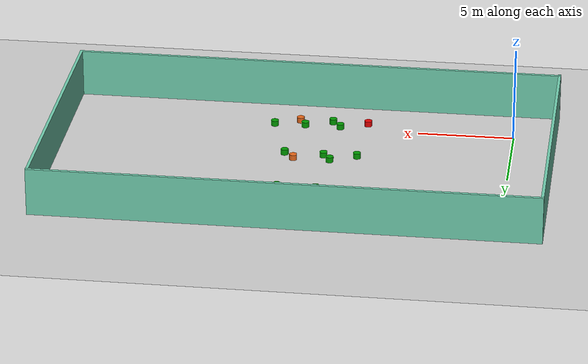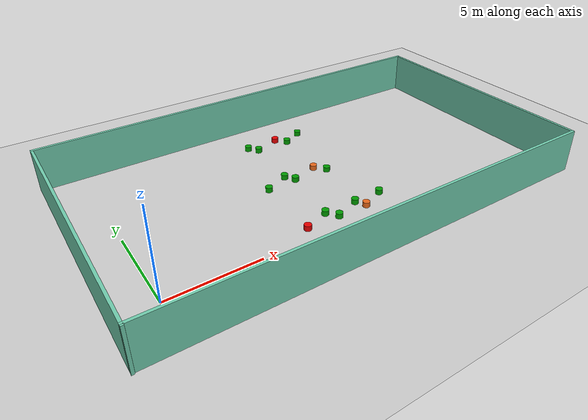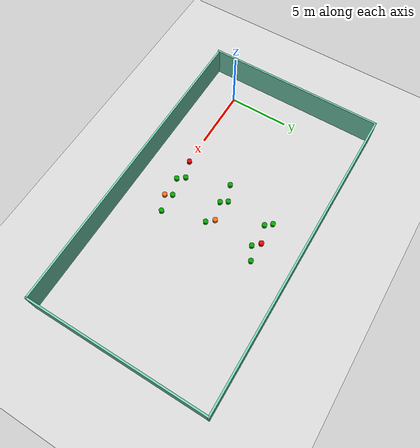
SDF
<sdf version="1.7">
 <world name="default">
  <model name="ground_plane">
   <static>1</static>
   <link name="link">
    <collision name="collision">
     <geometry><plane><normal>0 0 1</normal><size>100 100</size></plane></geometry>
     <surface><friction><ode><mu>100</mu><mu2>50</mu2></ode></friction></surface>
    </collision>
    <visual name="visual">
     <cast_shadows>0</cast_shadows>
     <geometry><plane><normal>0 0 1</normal><size>100 100</size></plane></geometry>
     <material>
      <script><uri>file://media/materials/scripts/gazebo.material</uri><name>Gazebo/Grey</name></script>
     </material>
    </visual>
   </link>
  </model>
  <model name="Test_pot_red">
   <link name="link_0">
    <inertial>
     <mass>0.044841</mass>
     <inertia>
      <ixx>0.00074807</ixx>
      <ixy>0</ixy>
      <ixz>0</ixz>
      <iyy>0.00074807</iyy>
      <iyz>0</iyz>
      <izz>0.00086495</izz>
     </inertia>
    </inertial>
    <pose>3e-06 1e-06 -0 0 -0 0</pose>
    <visual name="visual">
     <geometry><cylinder><radius>0.196415</radius><length>0.290612</length></cylinder></geometry>
     <material>
      <lighting>1</lighting>
      <script><uri>file://media/materials/scripts/gazebo.material</uri><name>Gazebo/Grey</name></script>
      <shader type="pixel"><normal_map>__default__</normal_map></shader>
      <ambient>0.3 0.3 0.3 1</ambient>
      <diffuse>0.9 0 0 1</diffuse>
      <specular>0.01 0.01 0.01 1</specular>
      <emissive>0 0 0 1</emissive>
     </material>
    </visual>
    <collision name="collision">
     <geometry><cylinder><radius>0.196415</radius><length>0.290612</length></cylinder></geometry>
     <surface>
      <friction>
       <ode><mu>1</mu><mu2>1</mu2><fdir1>0 0 0</fdir1><slip1>0</slip1><slip2>0</slip2></ode>
       <torsional>
        <coefficient>1</coefficient>
        <patch_radius>0</patch_radius>
        <surface_radius>0</surface_radius>
        <use_patch_radius>1</use_patch_radius>
        <ode><slip>0</slip></ode>
       </torsional>
      </friction>
      <bounce><restitution_coefficient>0</restitution_coefficient><threshold>1e+06</threshold></bounce>
      <contact>
       <collide_without_contact>0</collide_without_contact>
       <collide_without_contact_bitmask>1</collide_without_contact_bitmask>
       <collide_bitmask>1</collide_bitmask>
       <ode>
        <soft_cfm>0</soft_cfm>
        <soft_erp>0.2</soft_erp>
        <kp>1e+13</kp>
        <kd>1</kd>
        <max_vel>0.01</max_vel>
        <min_depth>0</min_depth>
       </ode>
       <bullet>
        <split_impulse>1</split_impulse>
        <split_impulse_penetration_threshold>-0.01</split_impulse_penetration_threshold>
        <soft_cfm>0</soft_cfm>
        <soft_erp>0.2</soft_erp>
        <kp>1e+13</kp>
        <kd>1</kd>
       </bullet>
      </contact>
     </surface>
    </collision>
   </link>
   <static>0</static>
   <pose>7.62258 0.258837 0.575565 2.7e-05 0 0.006551</pose>
  </model>
  <model name="Test_pot_orange">
   <link name="link_0">
    <inertial>
     <mass>0.044841</mass>
     <inertia>
      <ixx>0.00074807</ixx>
      <ixy>0</ixy>
      <ixz>0</ixz>
      <iyy>0.00074807</iyy>
      <iyz>0</iyz>
      <izz>0.00086495</izz>
     </inertia>
    </inertial>
    <pose>3e-06 1e-06 -0 0 -0 0</pose>
    <visual name="visual">
     <geometry><cylinder><radius>0.196415</radius><length>0.290612</length></cylinder></geometry>
     <material>
      <lighting>1</lighting>
      <script><uri>file://media/materials/scripts/gazebo.material</uri><name>Gazebo/Grey</name></script>
      <shader type="pixel"><normal_map>__default__</normal_map></shader>
      <ambient>0.3 0.3 0.3 1</ambient>
      <diffuse>0.9 0.4 0.1 1</diffuse>
      <specular>0.01 0.01 0.01 1</specular>
      <emissive>0 0 0 1</emissive>
     </material>
    </visual>
    <collision name="collision">
     <geometry><cylinder><radius>0.196415</radius><length>0.290612</length></cylinder></geometry>
     <surface>
      <friction>
       <ode><mu>1</mu><mu2>1</mu2><fdir1>0 0 0</fdir1><slip1>0</slip1><slip2>0</slip2></ode>
       <torsional>
        <coefficient>1</coefficient>
        <patch_radius>0</patch_radius>
        <surface_radius>0</surface_radius>
        <use_patch_radius>1</use_patch_radius>
        <ode><slip>0</slip></ode>
       </torsional>
      </friction>
      <bounce><restitution_coefficient>0</restitution_coefficient><threshold>1e+06</threshold></bounce>
      <contact>
       <collide_without_contact>0</collide_without_contact>
       <collide_without_contact_bitmask>1</collide_without_contact_bitmask>
       <collide_bitmask>1</collide_bitmask>
       <ode>
        <soft_cfm>0</soft_cfm>
        <soft_erp>0.2</soft_erp>
        <kp>1e+13</kp>
        <kd>1</kd>
        <max_vel>0.01</max_vel>
        <min_depth>0</min_depth>
       </ode>
       <bullet>
        <split_impulse>1</split_impulse>
        <split_impulse_penetration_threshold>-0.01</split_impulse_penetration_threshold>
        <soft_cfm>0</soft_cfm>
        <soft_erp>0.2</soft_erp>
        <kp>1e+13</kp>
        <kd>1</kd>
       </bullet>
      </contact>
     </surface>
    </collision>
   </link>
   <static>0</static>
   <pose>11.1966 0.219359 0.57385 9.3e-05 -8e-06 0.011416</pose>
  </model>
  <model name="walls3">
   <link name="Wall_10">
    <pose>12.8059 -2.49306 0 0 -0 1.5708</pose>
    <inertial>
     <inertia><ixx>0</ixx><ixy>0</ixy><ixz>0</ixz><iyy>0</iyy><iyz>0</iyz><izz>0</izz></inertia>
     <mass>0</mass>
    </inertial>
    <visual name="Wall_10_Visual">
     <pose>0 0 1.25 0 -0 0</pose>
     <geometry><box><size>14.709 0.15 2.5</size></box></geometry>
     <material>
      <script><uri>file://media/materials/scripts/gazebo.material</uri><name>Gazebo/Grey</name></script>
      <ambient>0.435294 0.796078 0.67451 1</ambient>
      <shader type="pixel"/>
     </material>
     <meta><layer>0</layer></meta>
    </visual>
    <collision name="Wall_10_Collision">
     <pose>0 0 1.25 0 -0 0</pose>
     <geometry><box><size>14.709 0.15 2.5</size></box></geometry>
     <surface>
      <friction>
       <ode><mu>1</mu><mu2>1</mu2><fdir1>0 0 0</fdir1><slip1>0</slip1><slip2>0</slip2></ode>
       <torsional>
        <coefficient>1</coefficient>
        <patch_radius>0</patch_radius>
        <surface_radius>0</surface_radius>
        <use_patch_radius>1</use_patch_radius>
        <ode><slip>0</slip></ode>
       </torsional>
      </friction>
      <bounce><restitution_coefficient>0</restitution_coefficient><threshold>1e+06</threshold></bounce>
      <contact>
       <collide_without_contact>0</collide_without_contact>
       <collide_without_contact_bitmask>1</collide_without_contact_bitmask>
       <collide_bitmask>1</collide_bitmask>
       <ode>
        <soft_cfm>0</soft_cfm>
        <soft_erp>0.2</soft_erp>
        <kp>1e+13</kp>
        <kd>1</kd>
        <max_vel>0.01</max_vel>
        <min_depth>0</min_depth>
       </ode>
       <bullet>
        <split_impulse>1</split_impulse>
        <split_impulse_penetration_threshold>-0.01</split_impulse_penetration_threshold>
        <soft_cfm>0</soft_cfm>
        <soft_erp>0.2</soft_erp>
        <kp>1e+13</kp>
        <kd>1</kd>
       </bullet>
      </contact>
     </surface>
    </collision>
   </link>
   <link name="Wall_12">
    <pose>0.013351 4.87054 0 0 -0 0</pose>
    <inertial>
     <inertia><ixx>0</ixx><ixy>0</ixy><ixz>0</ixz><iyy>0</iyy><iyz>0</iyz><izz>0</izz></inertia>
     <mass>0</mass>
    </inertial>
    <visual name="Wall_12_Visual">
     <pose>0 0 1.25 0 -0 0</pose>
     <geometry><box><size>25.75 0.15 2.5</size></box></geometry>
     <material>
      <script><uri>file://media/materials/scripts/gazebo.material</uri><name>Gazebo/Grey</name></script>
      <ambient>0.435294 0.796078 0.67451 1</ambient>
      <shader type="pixel"/>
     </material>
     <meta><layer>0</layer></meta>
    </visual>
    <collision name="Wall_12_Collision">
     <pose>0 0 1.25 0 -0 0</pose>
     <geometry><box><size>25.75 0.15 2.5</size></box></geometry>
     <surface>
      <friction>
       <ode><mu>1</mu><mu2>1</mu2><fdir1>0 0 0</fdir1><slip1>0</slip1><slip2>0</slip2></ode>
       <torsional>
        <coefficient>1</coefficient>
        <patch_radius>0</patch_radius>
        <surface_radius>0</surface_radius>
        <use_patch_radius>1</use_patch_radius>
        <ode><slip>0</slip></ode>
       </torsional>
      </friction>
      <bounce><restitution_coefficient>0</restitution_coefficient><threshold>1e+06</threshold></bounce>
      <contact>
       <collide_without_contact>0</collide_without_contact>
       <collide_without_contact_bitmask>1</collide_without_contact_bitmask>
       <collide_bitmask>1</collide_bitmask>
       <ode>
        <soft_cfm>0</soft_cfm>
        <soft_erp>0.2</soft_erp>
        <kp>1e+13</kp>
        <kd>1</kd>
        <max_vel>0.01</max_vel>
        <min_depth>0</min_depth>
       </ode>
       <bullet>
        <split_impulse>1</split_impulse>
        <split_impulse_penetration_threshold>-0.01</split_impulse_penetration_threshold>
        <soft_cfm>0</soft_cfm>
        <soft_erp>0.2</soft_erp>
        <kp>1e+13</kp>
        <kd>1</kd>
       </bullet>
      </contact>
     </surface>
    </collision>
   </link>
   <link name="Wall_6">
    <pose>-12.8033 -2.47448 0 0 0 -1.57216</pose>
    <inertial>
     <inertia><ixx>0</ixx><ixy>0</ixy><ixz>0</ixz><iyy>0</iyy><iyz>0</iyz><izz>0</izz></inertia>
     <mass>0</mass>
    </inertial>
    <visual name="Wall_6_Visual">
     <pose>0 0 1.25 0 -0 0</pose>
     <geometry><box><size>14.8095 0.15 2.5</size></box></geometry>
     <material>
      <script><uri>file://media/materials/scripts/gazebo.material</uri><name>Gazebo/Grey</name></script>
      <ambient>0.435294 0.796078 0.67451 1</ambient>
      <shader type="pixel"/>
     </material>
     <meta><layer>0</layer></meta>
    </visual>
    <collision name="Wall_6_Collision">
     <pose>0 0 1.25 0 -0 0</pose>
     <geometry><box><size>14.8095 0.15 2.5</size></box></geometry>
     <surface>
      <friction>
       <ode><mu>1</mu><mu2>1</mu2><fdir1>0 0 0</fdir1><slip1>0</slip1><slip2>0</slip2></ode>
       <torsional>
        <coefficient>1</coefficient>
        <patch_radius>0</patch_radius>
        <surface_radius>0</surface_radius>
        <use_patch_radius>1</use_patch_radius>
        <ode><slip>0</slip></ode>
       </torsional>
      </friction>
      <bounce><restitution_coefficient>0</restitution_coefficient><threshold>1e+06</threshold></bounce>
      <contact>
       <collide_without_contact>0</collide_without_contact>
       <collide_without_contact_bitmask>1</collide_without_contact_bitmask>
       <collide_bitmask>1</collide_bitmask>
       <ode>
        <soft_cfm>0</soft_cfm>
        <soft_erp>0.2</soft_erp>
        <kp>1e+13</kp>
        <kd>1</kd>
        <max_vel>0.01</max_vel>
        <min_depth>0</min_depth>
       </ode>
       <bullet>
        <split_impulse>1</split_impulse>
        <split_impulse_penetration_threshold>-0.01</split_impulse_penetration_threshold>
        <soft_cfm>0</soft_cfm>
        <soft_erp>0.2</soft_erp>
        <kp>1e+13</kp>
        <kd>1</kd>
       </bullet>
      </contact>
     </surface>
    </collision>
   </link>
   <link name="Wall_8">
    <pose>-0.003688 -9.7616 0 0 0 -0.001038</pose>
    <visual name="Wall_8_Visual">
     <pose>0 0 1.25 0 -0 0</pose>
     <geometry><box><size>25.7691 0.15 2.5</size></box></geometry>
     <material>
      <script><uri>file://media/materials/scripts/gazebo.material</uri><name>Gazebo/Grey</name></script>
      <ambient>0.435294 0.796078 0.67451 1</ambient>
      <shader type="pixel"/>
     </material>
     <meta><layer>0</layer></meta>
    </visual>
    <collision name="Wall_8_Collision">
     <pose>0 0 1.25 0 -0 0</pose>
     <geometry><box><size>25.7691 0.15 2.5</size></box></geometry>
     <surface>
      <friction>
       <ode><mu>1</mu><mu2>1</mu2><fdir1>0 0 0</fdir1><slip1>0</slip1><slip2>0</slip2></ode>
       <torsional>
        <coefficient>1</coefficient>
        <patch_radius>0</patch_radius>
        <surface_radius>0</surface_radius>
        <use_patch_radius>1</use_patch_radius>
        <ode><slip>0</slip></ode>
       </torsional>
      </friction>
      <bounce><restitution_coefficient>0</restitution_coefficient><threshold>1e+06</threshold></bounce>
      <contact>
       <collide_without_contact>0</collide_without_contact>
       <collide_without_contact_bitmask>1</collide_without_contact_bitmask>
       <collide_bitmask>1</collide_bitmask>
       <ode>
        <soft_cfm>0</soft_cfm>
        <soft_erp>0.2</soft_erp>
        <kp>1e+13</kp>
        <kd>1</kd>
        <max_vel>0.01</max_vel>
        <min_depth>0</min_depth>
       </ode>
       <bullet>
        <split_impulse>1</split_impulse>
        <split_impulse_penetration_threshold>-0.01</split_impulse_penetration_threshold>
        <soft_cfm>0</soft_cfm>
        <soft_erp>0.2</soft_erp>
        <kp>1e+13</kp>
        <kd>1</kd>
       </bullet>
      </contact>
     </surface>
    </collision>
   </link>
   <static>1</static>
   <pose>10.639 6.94407 0 0 -0 0</pose>
  </model>
  <model name="Test_pot_green_clone_0">
   <link name="link_0">
    <inertial>
     <mass>0.044841</mass>
     <inertia>
      <ixx>0.00074807</ixx>
      <ixy>0</ixy>
      <ixz>0</ixz>
      <iyy>0.00074807</iyy>
      <iyz>0</iyz>
      <izz>0.00086495</izz>
     </inertia>
    </inertial>
    <pose>3e-06 1e-06 0 0 -0 0</pose>
    <visual name="visual">
     <geometry><cylinder><radius>0.196415</radius><length>0.290612</length></cylinder></geometry>
     <material>
      <lighting>1</lighting>
      <script><uri>file://media/materials/scripts/gazebo.material</uri><name>Gazebo/Grey</name></script>
      <shader type="pixel"><normal_map>__default__</normal_map></shader>
      <diffuse>0 0.6 0 0</diffuse>
      <ambient>0.3 0.3 0.3 1</ambient>
      <specular>0.01 0.01 0.01 1</specular>
      <emissive>0 0 0 1</emissive>
     </material>
    </visual>
    <collision name="collision">
     <geometry><cylinder><radius>0.196415</radius><length>0.290612</length></cylinder></geometry>
     <surface>
      <friction>
       <ode><mu>1</mu><mu2>1</mu2><fdir1>0 0 0</fdir1><slip1>0</slip1><slip2>0</slip2></ode>
       <torsional>
        <coefficient>1</coefficient>
        <patch_radius>0</patch_radius>
        <surface_radius>0</surface_radius>
        <use_patch_radius>1</use_patch_radius>
        <ode><slip>0</slip></ode>
       </torsional>
      </friction>
      <bounce><restitution_coefficient>0</restitution_coefficient><threshold>1e+06</threshold></bounce>
      <contact>
       <collide_without_contact>0</collide_without_contact>
       <collide_without_contact_bitmask>1</collide_without_contact_bitmask>
       <collide_bitmask>1</collide_bitmask>
       <ode>
        <soft_cfm>0</soft_cfm>
        <soft_erp>0.2</soft_erp>
        <kp>1e+13</kp>
        <kd>1</kd>
        <max_vel>0.01</max_vel>
        <min_depth>0</min_depth>
       </ode>
       <bullet>
        <split_impulse>1</split_impulse>
        <split_impulse_penetration_threshold>-0.01</split_impulse_penetration_threshold>
        <soft_cfm>0</soft_cfm>
        <soft_erp>0.2</soft_erp>
        <kp>1e+13</kp>
        <kd>1</kd>
       </bullet>
      </contact>
     </surface>
    </collision>
   </link>
   <static>0</static>
   <pose>7.78114 4.20143 0.575591 0 -1.1e-05 0.003268</pose>
  </model>
  <model name="Test_pot_green_clone_1">
   <link name="link_0">
    <inertial>
     <mass>0.044841</mass>
     <inertia>
      <ixx>0.00074807</ixx>
      <ixy>0</ixy>
      <ixz>0</ixz>
      <iyy>0.00074807</iyy>
      <iyz>0</iyz>
      <izz>0.00086495</izz>
     </inertia>
    </inertial>
    <pose>3e-06 1e-06 0 0 -0 0</pose>
    <visual name="visual">
     <geometry><cylinder><radius>0.196415</radius><length>0.290612</length></cylinder></geometry>
     <material>
      <lighting>1</lighting>
      <script><uri>file://media/materials/scripts/gazebo.material</uri><name>Gazebo/Grey</name></script>
      <shader type="pixel"><normal_map>__default__</normal_map></shader>
      <diffuse>0 0.6 0 0</diffuse>
      <ambient>0.3 0.3 0.3 1</ambient>
      <specular>0.01 0.01 0.01 1</specular>
      <emissive>0 0 0 1</emissive>
     </material>
    </visual>
    <collision name="collision">
     <geometry><cylinder><radius>0.196415</radius><length>0.290612</length></cylinder></geometry>
     <surface>
      <friction>
       <ode><mu>1</mu><mu2>1</mu2><fdir1>0 0 0</fdir1><slip1>0</slip1><slip2>0</slip2></ode>
       <torsional>
        <coefficient>1</coefficient>
        <patch_radius>0</patch_radius>
        <surface_radius>0</surface_radius>
        <use_patch_radius>1</use_patch_radius>
        <ode><slip>0</slip></ode>
       </torsional>
      </friction>
      <bounce><restitution_coefficient>0</restitution_coefficient><threshold>1e+06</threshold></bounce>
      <contact>
       <collide_without_contact>0</collide_without_contact>
       <collide_without_contact_bitmask>1</collide_without_contact_bitmask>
       <collide_bitmask>1</collide_bitmask>
       <ode>
        <soft_cfm>0</soft_cfm>
        <soft_erp>0.2</soft_erp>
        <kp>1e+13</kp>
        <kd>1</kd>
        <max_vel>0.01</max_vel>
        <min_depth>0</min_depth>
       </ode>
       <bullet>
        <split_impulse>1</split_impulse>
        <split_impulse_penetration_threshold>-0.01</split_impulse_penetration_threshold>
        <soft_cfm>0</soft_cfm>
        <soft_erp>0.2</soft_erp>
        <kp>1e+13</kp>
        <kd>1</kd>
       </bullet>
      </contact>
     </surface>
    </collision>
   </link>
   <static>0</static>
   <pose>11.5309 4.19869 0.575589 -1e-06 -0 0.01172</pose>
  </model>
  <model name="Test_pot_green_clone_4">
   <link name="link_0">
    <inertial>
     <mass>0.044841</mass>
     <inertia>
      <ixx>0.00074807</ixx>
      <ixy>0</ixy>
      <ixz>0</ixz>
      <iyy>0.00074807</iyy>
      <iyz>0</iyz>
      <izz>0.00086495</izz>
     </inertia>
    </inertial>
    <pose>3e-06 1e-06 0 0 -0 0</pose>
    <visual name="visual">
     <geometry><cylinder><radius>0.196415</radius><length>0.290612</length></cylinder></geometry>
     <material>
      <lighting>1</lighting>
      <script><uri>file://media/materials/scripts/gazebo.material</uri><name>Gazebo/Grey</name></script>
      <shader type="pixel"><normal_map>__default__</normal_map></shader>
      <diffuse>0 0.6 0 0</diffuse>
      <ambient>0.3 0.3 0.3 1</ambient>
      <specular>0.01 0.01 0.01 1</specular>
      <emissive>0 0 0 1</emissive>
     </material>
    </visual>
    <collision name="collision">
     <geometry><cylinder><radius>0.196415</radius><length>0.290612</length></cylinder></geometry>
     <surface>
      <friction>
       <ode><mu>1</mu><mu2>1</mu2><fdir1>0 0 0</fdir1><slip1>0</slip1><slip2>0</slip2></ode>
       <torsional>
        <coefficient>1</coefficient>
        <patch_radius>0</patch_radius>
        <surface_radius>0</surface_radius>
        <use_patch_radius>1</use_patch_radius>
        <ode><slip>0</slip></ode>
       </torsional>
      </friction>
      <bounce><restitution_coefficient>0</restitution_coefficient><threshold>1e+06</threshold></bounce>
      <contact>
       <collide_without_contact>0</collide_without_contact>
       <collide_without_contact_bitmask>1</collide_without_contact_bitmask>
       <collide_bitmask>1</collide_bitmask>
       <ode>
        <soft_cfm>0</soft_cfm>
        <soft_erp>0.2</soft_erp>
        <kp>1e+13</kp>
        <kd>1</kd>
        <max_vel>0.01</max_vel>
        <min_depth>0</min_depth>
       </ode>
       <bullet>
        <split_impulse>1</split_impulse>
        <split_impulse_penetration_threshold>-0.01</split_impulse_penetration_threshold>
        <soft_cfm>0</soft_cfm>
        <soft_erp>0.2</soft_erp>
        <kp>1e+13</kp>
        <kd>1</kd>
       </bullet>
      </contact>
     </surface>
    </collision>
   </link>
   <static>0</static>
   <pose>11.4075 8.2105 0.574212 0.000102 -7e-06 0.025878</pose>
  </model>
  <model name="Test_pot_green_clone_8">
   <link name="link_0">
    <inertial>
     <mass>0.044841</mass>
     <inertia>
      <ixx>0.00074807</ixx>
      <ixy>0</ixy>
      <ixz>0</ixz>
      <iyy>0.00074807</iyy>
      <iyz>0</iyz>
      <izz>0.00086495</izz>
     </inertia>
    </inertial>
    <pose>3e-06 1e-06 0 0 -0 0</pose>
    <visual name="visual">
     <geometry><cylinder><radius>0.196415</radius><length>0.290612</length></cylinder></geometry>
     <material>
      <lighting>1</lighting>
      <script><uri>file://media/materials/scripts/gazebo.material</uri><name>Gazebo/Grey</name></script>
      <shader type="pixel"><normal_map>__default__</normal_map></shader>
      <diffuse>0 0.6 0 0</diffuse>
      <ambient>0.3 0.3 0.3 1</ambient>
      <specular>0.01 0.01 0.01 1</specular>
      <emissive>0 0 0 1</emissive>
     </material>
    </visual>
    <collision name="collision">
     <geometry><cylinder><radius>0.196415</radius><length>0.290612</length></cylinder></geometry>
     <surface>
      <friction>
       <ode><mu>1</mu><mu2>1</mu2><fdir1>0 0 0</fdir1><slip1>0</slip1><slip2>0</slip2></ode>
       <torsional>
        <coefficient>1</coefficient>
        <patch_radius>0</patch_radius>
        <surface_radius>0</surface_radius>
        <use_patch_radius>1</use_patch_radius>
        <ode><slip>0</slip></ode>
       </torsional>
      </friction>
      <bounce><restitution_coefficient>0</restitution_coefficient><threshold>1e+06</threshold></bounce>
      <contact>
       <collide_without_contact>0</collide_without_contact>
       <collide_without_contact_bitmask>1</collide_without_contact_bitmask>
       <collide_bitmask>1</collide_bitmask>
       <ode>
        <soft_cfm>0</soft_cfm>
        <soft_erp>0.2</soft_erp>
        <kp>1e+13</kp>
        <kd>1</kd>
        <max_vel>0.01</max_vel>
        <min_depth>0</min_depth>
       </ode>
       <bullet>
        <split_impulse>1</split_impulse>
        <split_impulse_penetration_threshold>-0.01</split_impulse_penetration_threshold>
        <soft_cfm>0</soft_cfm>
        <soft_erp>0.2</soft_erp>
        <kp>1e+13</kp>
        <kd>1</kd>
       </bullet>
      </contact>
     </surface>
    </collision>
   </link>
   <static>0</static>
   <pose>10.8855 0.760232 0.575592 3e-06 -1.6e-05 0.004425</pose>
  </model>
  <model name="Test_pot_orange_clone_clone">
   <link name="link_0">
    <inertial>
     <mass>0.044841</mass>
     <inertia>
      <ixx>0.00074807</ixx>
      <ixy>0</ixy>
      <ixz>0</ixz>
      <iyy>0.00074807</iyy>
      <iyz>0</iyz>
      <izz>0.00086495</izz>
     </inertia>
    </inertial>
    <pose>3e-06 1e-06 -0 0 -0 0</pose>
    <visual name="visual">
     <geometry><cylinder><radius>0.196415</radius><length>0.290612</length></cylinder></geometry>
     <material>
      <lighting>1</lighting>
      <script><uri>file://media/materials/scripts/gazebo.material</uri><name>Gazebo/Grey</name></script>
      <shader type="pixel"><normal_map>__default__</normal_map></shader>
      <ambient>0.3 0.3 0.3 1</ambient>
      <diffuse>0.9 0.4 0.1 1</diffuse>
      <specular>0.01 0.01 0.01 1</specular>
      <emissive>0 0 0 1</emissive>
     </material>
    </visual>
    <collision name="collision">
     <geometry><cylinder><radius>0.196415</radius><length>0.290612</length></cylinder></geometry>
     <surface>
      <friction>
       <ode><mu>1</mu><mu2>1</mu2><fdir1>0 0 0</fdir1><slip1>0</slip1><slip2>0</slip2></ode>
       <torsional>
        <coefficient>1</coefficient>
        <patch_radius>0</patch_radius>
        <surface_radius>0</surface_radius>
        <use_patch_radius>1</use_patch_radius>
        <ode><slip>0</slip></ode>
       </torsional>
      </friction>
      <bounce><restitution_coefficient>0</restitution_coefficient><threshold>1e+06</threshold></bounce>
      <contact>
       <collide_without_contact>0</collide_without_contact>
       <collide_without_contact_bitmask>1</collide_without_contact_bitmask>
       <collide_bitmask>1</collide_bitmask>
       <ode>
        <soft_cfm>0</soft_cfm>
        <soft_erp>0.2</soft_erp>
        <kp>1e+13</kp>
        <kd>1</kd>
        <max_vel>0.01</max_vel>
        <min_depth>0</min_depth>
       </ode>
       <bullet>
        <split_impulse>1</split_impulse>
        <split_impulse_penetration_threshold>-0.01</split_impulse_penetration_threshold>
        <soft_cfm>0</soft_cfm>
        <soft_erp>0.2</soft_erp>
        <kp>1e+13</kp>
        <kd>1</kd>
       </bullet>
      </contact>
     </surface>
    </collision>
   </link>
   <static>0</static>
   <pose>11.0193 4.76473 0.575589 -1e-06 -0 0.004456</pose>
  </model>
  <model name="Test_pot_red_clone">
   <link name="link_0">
    <inertial>
     <mass>0.044841</mass>
     <inertia>
      <ixx>0.00074807</ixx>
      <ixy>0</ixy>
      <ixz>0</ixz>
      <iyy>0.00074807</iyy>
      <iyz>0</iyz>
      <izz>0.00086495</izz>
     </inertia>
    </inertial>
    <pose>3e-06 1e-06 -0 0 -0 0</pose>
    <visual name="visual">
     <geometry><cylinder><radius>0.196415</radius><length>0.290612</length></cylinder></geometry>
     <material>
      <lighting>1</lighting>
      <script><uri>file://media/materials/scripts/gazebo.material</uri><name>Gazebo/Grey</name></script>
      <shader type="pixel"><normal_map>__default__</normal_map></shader>
      <ambient>0.3 0.3 0.3 1</ambient>
      <diffuse>0.9 0 0 1</diffuse>
      <specular>0.01 0.01 0.01 1</specular>
      <emissive>0 0 0 1</emissive>
     </material>
    </visual>
    <collision name="collision">
     <geometry><cylinder><radius>0.196415</radius><length>0.290612</length></cylinder></geometry>
     <surface>
      <friction>
       <ode><mu>1</mu><mu2>1</mu2><fdir1>0 0 0</fdir1><slip1>0</slip1><slip2>0</slip2></ode>
       <torsional>
        <coefficient>1</coefficient>
        <patch_radius>0</patch_radius>
        <surface_radius>0</surface_radius>
        <use_patch_radius>1</use_patch_radius>
        <ode><slip>0</slip></ode>
       </torsional>
      </friction>
      <bounce><restitution_coefficient>0</restitution_coefficient><threshold>1e+06</threshold></bounce>
      <contact>
       <collide_without_contact>0</collide_without_contact>
       <collide_without_contact_bitmask>1</collide_without_contact_bitmask>
       <collide_bitmask>1</collide_bitmask>
       <ode>
        <soft_cfm>0</soft_cfm>
        <soft_erp>0.2</soft_erp>
        <kp>1e+13</kp>
        <kd>1</kd>
        <max_vel>0.01</max_vel>
        <min_depth>0</min_depth>
       </ode>
       <bullet>
        <split_impulse>1</split_impulse>
        <split_impulse_penetration_threshold>-0.01</split_impulse_penetration_threshold>
        <soft_cfm>0</soft_cfm>
        <soft_erp>0.2</soft_erp>
        <kp>1e+13</kp>
        <kd>1</kd>
       </bullet>
      </contact>
     </surface>
    </collision>
   </link>
   <static>0</static>
   <pose>10.8834 8.75081 0.575592 -1.5e-05 -0 0.006131</pose>
  </model>
  <model name="Test_pot_green_clone_13">
   <link name="link_0">
    <inertial>
     <mass>0.044841</mass>
     <inertia>
      <ixx>0.00074807</ixx>
      <ixy>0</ixy>
      <ixz>0</ixz>
      <iyy>0.00074807</iyy>
      <iyz>0</iyz>
      <izz>0.00086495</izz>
     </inertia>
    </inertial>
    <pose>3e-06 1e-06 0 0 -0 0</pose>
    <visual name="visual">
     <geometry><cylinder><radius>0.196415</radius><length>0.290612</length></cylinder></geometry>
     <material>
      <lighting>1</lighting>
      <script><uri>file://media/materials/scripts/gazebo.material</uri><name>Gazebo/Grey</name></script>
      <shader type="pixel"><normal_map>__default__</normal_map></shader>
      <diffuse>0 0.6 0 0</diffuse>
      <ambient>0.3 0.3 0.3 1</ambient>
      <specular>0.01 0.01 0.01 1</specular>
      <emissive>0 0 0 1</emissive>
     </material>
    </visual>
    <collision name="collision">
     <geometry><cylinder><radius>0.196415</radius><length>0.290612</length></cylinder></geometry>
     <surface>
      <friction>
       <ode><mu>1</mu><mu2>1</mu2><fdir1>0 0 0</fdir1><slip1>0</slip1><slip2>0</slip2></ode>
       <torsional>
        <coefficient>1</coefficient>
        <patch_radius>0</patch_radius>
        <surface_radius>0</surface_radius>
        <use_patch_radius>1</use_patch_radius>
        <ode><slip>0</slip></ode>
       </torsional>
      </friction>
      <bounce><restitution_coefficient>0</restitution_coefficient><threshold>1e+06</threshold></bounce>
      <contact>
       <collide_without_contact>0</collide_without_contact>
       <collide_without_contact_bitmask>1</collide_without_contact_bitmask>
       <collide_bitmask>1</collide_bitmask>
       <ode>
        <soft_cfm>0</soft_cfm>
        <soft_erp>0.2</soft_erp>
        <kp>1e+13</kp>
        <kd>1</kd>
        <max_vel>0.01</max_vel>
        <min_depth>0</min_depth>
       </ode>
       <bullet>
        <split_impulse>1</split_impulse>
        <split_impulse_penetration_threshold>-0.01</split_impulse_penetration_threshold>
        <soft_cfm>0</soft_cfm>
        <soft_erp>0.2</soft_erp>
        <kp>1e+13</kp>
        <kd>1</kd>
       </bullet>
      </contact>
     </surface>
    </collision>
   </link>
   <static>0</static>
   <pose>9.48001 0.223472 0.575566 3e-05 -1.9e-05 0.010059</pose>
  </model>
  <model name="Test_pot_green_clone_14">
   <link name="link_0">
    <inertial>
     <mass>0.044841</mass>
     <inertia>
      <ixx>0.00074807</ixx>
      <ixy>0</ixy>
      <ixz>0</ixz>
      <iyy>0.00074807</iyy>
      <iyz>0</iyz>
      <izz>0.00086495</izz>
     </inertia>
    </inertial>
    <pose>3e-06 1e-06 0 0 -0 0</pose>
    <visual name="visual">
     <geometry><cylinder><radius>0.196415</radius><length>0.290612</length></cylinder></geometry>
     <material>
      <lighting>1</lighting>
      <script><uri>file://media/materials/scripts/gazebo.material</uri><name>Gazebo/Grey</name></script>
      <shader type="pixel"><normal_map>__default__</normal_map></shader>
      <diffuse>0 0.6 0 0</diffuse>
      <ambient>0.3 0.3 0.3 1</ambient>
      <specular>0.01 0.01 0.01 1</specular>
      <emissive>0 0 0 1</emissive>
     </material>
    </visual>
    <collision name="collision">
     <geometry><cylinder><radius>0.196415</radius><length>0.290612</length></cylinder></geometry>
     <surface>
      <friction>
       <ode><mu>1</mu><mu2>1</mu2><fdir1>0 0 0</fdir1><slip1>0</slip1><slip2>0</slip2></ode>
       <torsional>
        <coefficient>1</coefficient>
        <patch_radius>0</patch_radius>
        <surface_radius>0</surface_radius>
        <use_patch_radius>1</use_patch_radius>
        <ode><slip>0</slip></ode>
       </torsional>
      </friction>
      <bounce><restitution_coefficient>0</restitution_coefficient><threshold>1e+06</threshold></bounce>
      <contact>
       <collide_without_contact>0</collide_without_contact>
       <collide_without_contact_bitmask>1</collide_without_contact_bitmask>
       <collide_bitmask>1</collide_bitmask>
       <ode>
        <soft_cfm>0</soft_cfm>
        <soft_erp>0.2</soft_erp>
        <kp>1e+13</kp>
        <kd>1</kd>
        <max_vel>0.01</max_vel>
        <min_depth>0</min_depth>
       </ode>
       <bullet>
        <split_impulse>1</split_impulse>
        <split_impulse_penetration_threshold>-0.01</split_impulse_penetration_threshold>
        <soft_cfm>0</soft_cfm>
        <soft_erp>0.2</soft_erp>
        <kp>1e+13</kp>
        <kd>1</kd>
       </bullet>
      </contact>
     </surface>
    </collision>
   </link>
   <static>0</static>
   <pose>9.02957 0.794117 0.575569 -1.9e-05 -0 0.011949</pose>
  </model>
  <model name="Test_pot_green_clone_16">
   <link name="link_0">
    <inertial>
     <mass>0.044841</mass>
     <inertia>
      <ixx>0.00074807</ixx>
      <ixy>0</ixy>
      <ixz>0</ixz>
      <iyy>0.00074807</iyy>
      <iyz>0</iyz>
      <izz>0.00086495</izz>
     </inertia>
    </inertial>
    <pose>3e-06 1e-06 0 0 -0 0</pose>
    <visual name="visual">
     <geometry><cylinder><radius>0.196415</radius><length>0.290612</length></cylinder></geometry>
     <material>
      <lighting>1</lighting>
      <script><uri>file://media/materials/scripts/gazebo.material</uri><name>Gazebo/Grey</name></script>
      <shader type="pixel"><normal_map>__default__</normal_map></shader>
      <diffuse>0 0.6 0 0</diffuse>
      <ambient>0.3 0.3 0.3 1</ambient>
      <specular>0.01 0.01 0.01 1</specular>
      <emissive>0 0 0 1</emissive>
     </material>
    </visual>
    <collision name="collision">
     <geometry><cylinder><radius>0.196415</radius><length>0.290612</length></cylinder></geometry>
     <surface>
      <friction>
       <ode><mu>1</mu><mu2>1</mu2><fdir1>0 0 0</fdir1><slip1>0</slip1><slip2>0</slip2></ode>
       <torsional>
        <coefficient>1</coefficient>
        <patch_radius>0</patch_radius>
        <surface_radius>0</surface_radius>
        <use_patch_radius>1</use_patch_radius>
        <ode><slip>0</slip></ode>
       </torsional>
      </friction>
      <bounce><restitution_coefficient>0</restitution_coefficient><threshold>1e+06</threshold></bounce>
      <contact>
       <collide_without_contact>0</collide_without_contact>
       <collide_without_contact_bitmask>1</collide_without_contact_bitmask>
       <collide_bitmask>1</collide_bitmask>
       <ode>
        <soft_cfm>0</soft_cfm>
        <soft_erp>0.2</soft_erp>
        <kp>1e+13</kp>
        <kd>1</kd>
        <max_vel>0.01</max_vel>
        <min_depth>0</min_depth>
       </ode>
       <bullet>
        <split_impulse>1</split_impulse>
        <split_impulse_penetration_threshold>-0.01</split_impulse_penetration_threshold>
        <soft_cfm>0</soft_cfm>
        <soft_erp>0.2</soft_erp>
        <kp>1e+13</kp>
        <kd>1</kd>
       </bullet>
      </contact>
     </surface>
    </collision>
   </link>
   <static>0</static>
   <pose>12.4974 0.774503 0.574718 1.7e-05 -6e-06 0.011172</pose>
  </model>
  <model name="Test_pot_green_clone_24">
   <link name="link_0">
    <inertial>
     <mass>0.044841</mass>
     <inertia>
      <ixx>0.00074807</ixx>
      <ixy>0</ixy>
      <ixz>0</ixz>
      <iyy>0.00074807</iyy>
      <iyz>0</iyz>
      <izz>0.00086495</izz>
     </inertia>
    </inertial>
    <pose>3e-06 1e-06 0 0 -0 0</pose>
    <visual name="visual">
     <geometry><cylinder><radius>0.196415</radius><length>0.290612</length></cylinder></geometry>
     <material>
      <lighting>1</lighting>
      <script><uri>file://media/materials/scripts/gazebo.material</uri><name>Gazebo/Grey</name></script>
      <shader type="pixel"><normal_map>__default__</normal_map></shader>
      <diffuse>0 0.6 0 0</diffuse>
      <ambient>0.3 0.3 0.3 1</ambient>
      <specular>0.01 0.01 0.01 1</specular>
      <emissive>0 0 0 1</emissive>
     </material>
    </visual>
    <collision name="collision">
     <geometry><cylinder><radius>0.196415</radius><length>0.290612</length></cylinder></geometry>
     <surface>
      <friction>
       <ode><mu>1</mu><mu2>1</mu2><fdir1>0 0 0</fdir1><slip1>0</slip1><slip2>0</slip2></ode>
       <torsional>
        <coefficient>1</coefficient>
        <patch_radius>0</patch_radius>
        <surface_radius>0</surface_radius>
        <use_patch_radius>1</use_patch_radius>
        <ode><slip>0</slip></ode>
       </torsional>
      </friction>
      <bounce><restitution_coefficient>0</restitution_coefficient><threshold>1e+06</threshold></bounce>
      <contact>
       <collide_without_contact>0</collide_without_contact>
       <collide_without_contact_bitmask>1</collide_without_contact_bitmask>
       <collide_bitmask>1</collide_bitmask>
       <ode>
        <soft_cfm>0</soft_cfm>
        <soft_erp>0.2</soft_erp>
        <kp>1e+13</kp>
        <kd>1</kd>
        <max_vel>0.01</max_vel>
        <min_depth>0</min_depth>
       </ode>
       <bullet>
        <split_impulse>1</split_impulse>
        <split_impulse_penetration_threshold>-0.01</split_impulse_penetration_threshold>
        <soft_cfm>0</soft_cfm>
        <soft_erp>0.2</soft_erp>
        <kp>1e+13</kp>
        <kd>1</kd>
       </bullet>
      </contact>
     </surface>
    </collision>
   </link>
   <static>0</static>
   <pose>12.5136 8.76366 0.575593 -2e-05 -0 0.010441</pose>
  </model>
  <model name="Test_pot_green_clone_27">
   <link name="link_0">
    <inertial>
     <mass>0.044841</mass>
     <inertia>
      <ixx>0.00074807</ixx>
      <ixy>0</ixy>
      <ixz>0</ixz>
      <iyy>0.00074807</iyy>
      <iyz>0</iyz>
      <izz>0.00086495</izz>
     </inertia>
    </inertial>
    <pose>3e-06 1e-06 0 0 -0 0</pose>
    <visual name="visual">
     <geometry><cylinder><radius>0.196415</radius><length>0.290612</length></cylinder></geometry>
     <material>
      <lighting>1</lighting>
      <script><uri>file://media/materials/scripts/gazebo.material</uri><name>Gazebo/Grey</name></script>
      <shader type="pixel"><normal_map>__default__</normal_map></shader>
      <diffuse>0 0.6 0 0</diffuse>
      <ambient>0.3 0.3 0.3 1</ambient>
      <specular>0.01 0.01 0.01 1</specular>
      <emissive>0 0 0 1</emissive>
     </material>
    </visual>
    <collision name="collision">
     <geometry><cylinder><radius>0.196415</radius><length>0.290612</length></cylinder></geometry>
     <surface>
      <friction>
       <ode><mu>1</mu><mu2>1</mu2><fdir1>0 0 0</fdir1><slip1>0</slip1><slip2>0</slip2></ode>
       <torsional>
        <coefficient>1</coefficient>
        <patch_radius>0</patch_radius>
        <surface_radius>0</surface_radius>
        <use_patch_radius>1</use_patch_radius>
        <ode><slip>0</slip></ode>
       </torsional>
      </friction>
      <bounce><restitution_coefficient>0</restitution_coefficient><threshold>1e+06</threshold></bounce>
      <contact>
       <collide_without_contact>0</collide_without_contact>
       <collide_without_contact_bitmask>1</collide_without_contact_bitmask>
       <collide_bitmask>1</collide_bitmask>
       <ode>
        <soft_cfm>0</soft_cfm>
        <soft_erp>0.2</soft_erp>
        <kp>1e+13</kp>
        <kd>1</kd>
        <max_vel>0.01</max_vel>
        <min_depth>0</min_depth>
       </ode>
       <bullet>
        <split_impulse>1</split_impulse>
        <split_impulse_penetration_threshold>-0.01</split_impulse_penetration_threshold>
        <soft_cfm>0</soft_cfm>
        <soft_erp>0.2</soft_erp>
        <kp>1e+13</kp>
        <kd>1</kd>
       </bullet>
      </contact>
     </surface>
    </collision>
   </link>
   <static>0</static>
   <pose>9.43957 8.22509 0.57559 3e-06 -0 0.012034</pose>
  </model>
  <model name="Test_pot_green_clone_28">
   <link name="link_0">
    <inertial>
     <mass>0.044841</mass>
     <inertia>
      <ixx>0.00074807</ixx>
      <ixy>0</ixy>
      <ixz>0</ixz>
      <iyy>0.00074807</iyy>
      <iyz>0</iyz>
      <izz>0.00086495</izz>
     </inertia>
    </inertial>
    <pose>3e-06 1e-06 0 0 -0 0</pose>
    <visual name="visual">
     <geometry><cylinder><radius>0.196415</radius><length>0.290612</length></cylinder></geometry>
     <material>
      <lighting>1</lighting>
      <script><uri>file://media/materials/scripts/gazebo.material</uri><name>Gazebo/Grey</name></script>
      <shader type="pixel"><normal_map>__default__</normal_map></shader>
      <diffuse>0 0.6 0 0</diffuse>
      <ambient>0.3 0.3 0.3 1</ambient>
      <specular>0.01 0.01 0.01 1</specular>
      <emissive>0 0 0 1</emissive>
     </material>
    </visual>
    <collision name="collision">
     <geometry><cylinder><radius>0.196415</radius><length>0.290612</length></cylinder></geometry>
     <surface>
      <friction>
       <ode><mu>1</mu><mu2>1</mu2><fdir1>0 0 0</fdir1><slip1>0</slip1><slip2>0</slip2></ode>
       <torsional>
        <coefficient>1</coefficient>
        <patch_radius>0</patch_radius>
        <surface_radius>0</surface_radius>
        <use_patch_radius>1</use_patch_radius>
        <ode><slip>0</slip></ode>
       </torsional>
      </friction>
      <bounce><restitution_coefficient>0</restitution_coefficient><threshold>1e+06</threshold></bounce>
      <contact>
       <collide_without_contact>0</collide_without_contact>
       <collide_without_contact_bitmask>1</collide_without_contact_bitmask>
       <collide_bitmask>1</collide_bitmask>
       <ode>
        <soft_cfm>0</soft_cfm>
        <soft_erp>0.2</soft_erp>
        <kp>1e+13</kp>
        <kd>1</kd>
        <max_vel>0.01</max_vel>
        <min_depth>0</min_depth>
       </ode>
       <bullet>
        <split_impulse>1</split_impulse>
        <split_impulse_penetration_threshold>-0.01</split_impulse_penetration_threshold>
        <soft_cfm>0</soft_cfm>
        <soft_erp>0.2</soft_erp>
        <kp>1e+13</kp>
        <kd>1</kd>
       </bullet>
      </contact>
     </surface>
    </collision>
   </link>
   <static>0</static>
   <pose>9.0152 8.73417 0.575593 2.1e-05 -2e-06 0.011197</pose>
  </model>
  <model name="Test_pot_green_clone_29">
   <link name="link_0">
    <inertial>
     <mass>0.044841</mass>
     <inertia>
      <ixx>0.00074807</ixx>
      <ixy>0</ixy>
      <ixz>0</ixz>
      <iyy>0.00074807</iyy>
      <iyz>0</iyz>
      <izz>0.00086495</izz>
     </inertia>
    </inertial>
    <pose>3e-06 1e-06 0 0 -0 0</pose>
    <visual name="visual">
     <geometry><cylinder><radius>0.196415</radius><length>0.290612</length></cylinder></geometry>
     <material>
      <lighting>1</lighting>
      <script><uri>file://media/materials/scripts/gazebo.material</uri><name>Gazebo/Grey</name></script>
      <shader type="pixel"><normal_map>__default__</normal_map></shader>
      <diffuse>0 0.6 0 0</diffuse>
      <ambient>0.3 0.3 0.3 1</ambient>
      <specular>0.01 0.01 0.01 1</specular>
      <emissive>0 0 0 1</emissive>
     </material>
    </visual>
    <collision name="collision">
     <geometry><cylinder><radius>0.196415</radius><length>0.290612</length></cylinder></geometry>
     <surface>
      <friction>
       <ode><mu>1</mu><mu2>1</mu2><fdir1>0 0 0</fdir1><slip1>0</slip1><slip2>0</slip2></ode>
       <torsional>
        <coefficient>1</coefficient>
        <patch_radius>0</patch_radius>
        <surface_radius>0</surface_radius>
        <use_patch_radius>1</use_patch_radius>
        <ode><slip>0</slip></ode>
       </torsional>
      </friction>
      <bounce><restitution_coefficient>0</restitution_coefficient><threshold>1e+06</threshold></bounce>
      <contact>
       <collide_without_contact>0</collide_without_contact>
       <collide_without_contact_bitmask>1</collide_without_contact_bitmask>
       <collide_bitmask>1</collide_bitmask>
       <ode>
        <soft_cfm>0</soft_cfm>
        <soft_erp>0.2</soft_erp>
        <kp>1e+13</kp>
        <kd>1</kd>
        <max_vel>0.01</max_vel>
        <min_depth>0</min_depth>
       </ode>
       <bullet>
        <split_impulse>1</split_impulse>
        <split_impulse_penetration_threshold>-0.01</split_impulse_penetration_threshold>
        <soft_cfm>0</soft_cfm>
        <soft_erp>0.2</soft_erp>
        <kp>1e+13</kp>
        <kd>1</kd>
       </bullet>
      </contact>
     </surface>
    </collision>
   </link>
   <static>0</static>
   <pose>9.49962 4.28467 0.575589 1e-06 -0 0.011102</pose>
  </model>
  <model name="Test_pot_green_clone_30">
   <link name="link_0">
    <inertial>
     <mass>0.044841</mass>
     <inertia>
      <ixx>0.00074807</ixx>
      <ixy>0</ixy>
      <ixz>0</ixz>
      <iyy>0.00074807</iyy>
      <iyz>0</iyz>
      <izz>0.00086495</izz>
     </inertia>
    </inertial>
    <pose>3e-06 1e-06 0 0 -0 0</pose>
    <visual name="visual">
     <geometry><cylinder><radius>0.196415</radius><length>0.290612</length></cylinder></geometry>
     <material>
      <lighting>1</lighting>
      <script><uri>file://media/materials/scripts/gazebo.material</uri><name>Gazebo/Grey</name></script>
      <shader type="pixel"><normal_map>__default__</normal_map></shader>
      <diffuse>0 0.6 0 0</diffuse>
      <ambient>0.3 0.3 0.3 1</ambient>
      <specular>0.01 0.01 0.01 1</specular>
      <emissive>0 0 0 1</emissive>
     </material>
    </visual>
    <collision name="collision">
     <geometry><cylinder><radius>0.196415</radius><length>0.290612</length></cylinder></geometry>
     <surface>
      <friction>
       <ode><mu>1</mu><mu2>1</mu2><fdir1>0 0 0</fdir1><slip1>0</slip1><slip2>0</slip2></ode>
       <torsional>
        <coefficient>1</coefficient>
        <patch_radius>0</patch_radius>
        <surface_radius>0</surface_radius>
        <use_patch_radius>1</use_patch_radius>
        <ode><slip>0</slip></ode>
       </torsional>
      </friction>
      <bounce><restitution_coefficient>0</restitution_coefficient><threshold>1e+06</threshold></bounce>
      <contact>
       <collide_without_contact>0</collide_without_contact>
       <collide_without_contact_bitmask>1</collide_without_contact_bitmask>
       <collide_bitmask>1</collide_bitmask>
       <ode>
        <soft_cfm>0</soft_cfm>
        <soft_erp>0.2</soft_erp>
        <kp>1e+13</kp>
        <kd>1</kd>
        <max_vel>0.01</max_vel>
        <min_depth>0</min_depth>
       </ode>
       <bullet>
        <split_impulse>1</split_impulse>
        <split_impulse_penetration_threshold>-0.01</split_impulse_penetration_threshold>
        <soft_cfm>0</soft_cfm>
        <soft_erp>0.2</soft_erp>
        <kp>1e+13</kp>
        <kd>1</kd>
       </bullet>
      </contact>
     </surface>
    </collision>
   </link>
   <static>0</static>
   <pose>9.12575 4.81416 0.575611 4.2e-05 -1.1e-05 0.011674</pose>
  </model>
 </world>
</sdf>
